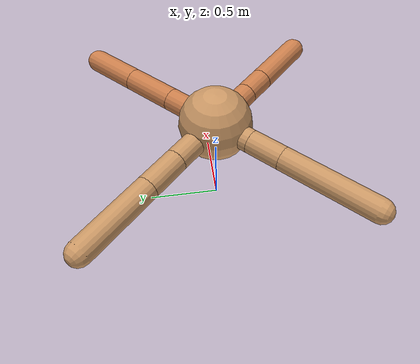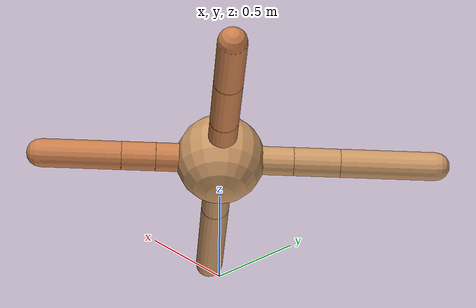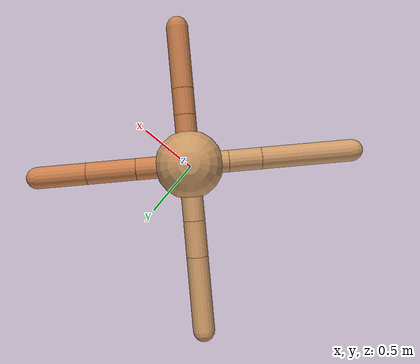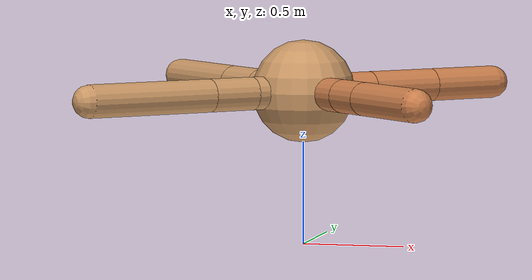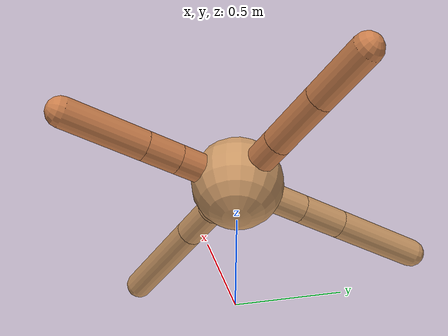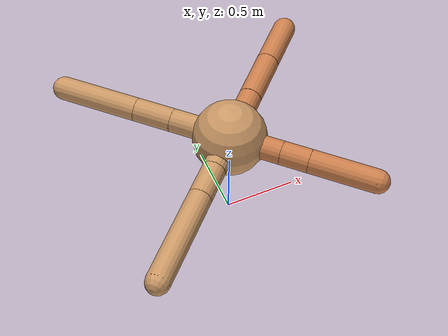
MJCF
<mujoco model="ant">
  <compiler angle="degree" coordinate="local" inertiafromgeom="true" />
  <option integrator="RK4" timestep="0.01" />
  <custom>
    <numeric data="0.0 0.0 0.55 1.0 0.0 0.0 0.0 0.0 1.0 0.0 -1.0 0.0 -1.0 0.0 1.0" name="init_qpos" />
  </custom>
  <default>
    <joint armature="1" damping="1" limited="true" />
    <geom conaffinity="0" condim="3" density="5.0" friction="1.5 0.1 0.1" margin="0.01" rgba="0.8 0.6 0.4 1" />
  </default>
  <worldbody>
    <body name="torso" pos="0 0 0.75">
      <geom name="torso_geom" pos="0 0 0" size="0.25" type="sphere" />

      <body name="front_left_leg" pos="0 0 0">
        <geom fromto="0.0 0.0 0.0 0.2715018656773346 0.2715018656773346 0.0" name="aux_1_geom" size="0.08" type="capsule" rgba=".8 .5 .3 1" />
        <body name="aux_1" pos="0.2715018656773346 0.2715018656773346 0.0">
          <joint axis="0 0 1" name="hip_1" pos="0.0 0.0 0.0" range="-40 40" type="hinge" />
          <geom fromto="0.0 0.0 0.0 0.2531786415042087 0.2531786415042087 0.0" name="left_leg_geom" size="0.08" type="capsule" rgba=".8 .5 .3 1" />
          <body pos="0.2531786415042087 0.2531786415042087 0.0" name="front_left_foot">
            <joint axis="-1 1 0" name="ankle_1" pos="0.0 0.0 0.0" range="30 100" type="hinge" />
            <geom fromto="0.0 0.0 0.0 0.2565979049956918 0.2565979049956918 0.0" name="left_ankle_geom" size="0.08" type="capsule" rgba=".8 .5 .3 1" />
          </body>
        </body>
      </body>
      <body name="front_right_leg" pos="0 0 0">
        <geom fromto="0.0 0.0 0.0 -0.28834330302167166 0.28834330302167166 0.0" name="aux_2_geom" size="0.08" type="capsule" />
        <body name="aux_2" pos="-0.28834330302167166 0.28834330302167166 0.0">
          <joint axis="0 0 1" name="hip_2" pos="0.0 0.0 0.0" range="-40 40" type="hinge" />
          <geom fromto="0.0 0.0 0.0 -0.18447859949484843 0.18447859949484843 0.0" name="right_leg_geom" size="0.08" type="capsule" />
          <body pos="-0.18447859949484843 0.18447859949484843 0.0" name="front_right_foot">
            <joint axis="1 1 0" name="ankle_2" pos="0.0 0.0 0.0" range="-100 -30" type="hinge" />
            <geom fromto="0.0 0.0 0.0 -0.3823880160130483 0.3823880160130483 0.0" name="right_ankle_geom" size="0.08" type="capsule" />
          </body>
        </body>
      </body>
      <body name="left_back_leg" pos="0 0 0">
        <geom fromto="0.0 0.0 0.0 -0.2033177977483388 -0.2033177977483388 0.0" name="aux_3_geom" size="0.08" type="capsule" />
        <body name="aux_3" pos="-0.2033177977483388 -0.2033177977483388 0.0">
          <joint axis="0 0 1" name="hip_3" pos="0.0 0.0 0.0" range="-40 40" type="hinge" />
          <geom fromto="0.0 0.0 0.0 -0.16711171985374315 -0.16711171985374315 0.0" name="back_leg_geom" size="0.08" type="capsule" />
          <body pos="-0.16711171985374315 -0.16711171985374315 0.0" name="left_back_foot">
            <joint axis="-1 1 0" name="ankle_3" pos="0.0 0.0 0.0" range="-100 -30" type="hinge" />
            <geom fromto="0.0 0.0 0.0 -0.4647649367981858 -0.4647649367981858 0.0" name="third_ankle_geom" size="0.08" type="capsule" />
          </body>
        </body>
      </body>
      <body name="right_back_leg" pos="0 0 0">
        <geom fromto="0.0 0.0 0.0 0.25474463964886235 -0.25474463964886235 0.0" name="aux_4_geom" size="0.08" type="capsule" rgba=".8 .5 .3 1" />
        <body name="aux_4" pos="0.25474463964886235 -0.25474463964886235 0.0">
          <joint axis="0 0 1" name="hip_4" pos="0.0 0.0 0.0" range="-40 40" type="hinge" />
          <geom fromto="0.0 0.0 0.0 0.13538774589385663 -0.13538774589385663 0.0" name="rightback_leg_geom" size="0.08" type="capsule" rgba=".8 .5 .3 1" />
          <body pos="0.13538774589385663 -0.13538774589385663 0.0" name="right_back_foot">
            <joint axis="1 1 0" name="ankle_4" pos="0.0 0.0 0.0" range="30 100" type="hinge" />
            <geom fromto="0.0 0.0 0.0 0.3162781189695852 -0.3162781189695852 0.0" name="fourth_ankle_geom" size="0.08" type="capsule" rgba=".8 .5 .3 1" />
          </body>
        </body>
      </body>
    </body>
  </worldbody>
  <actuator>
    <motor ctrllimited="true" ctrlrange="-1.0 1.0" joint="hip_4" gear="150" />
    <motor ctrllimited="true" ctrlrange="-1.0 1.0" joint="ankle_4" gear="150" />
    <motor ctrllimited="true" ctrlrange="-1.0 1.0" joint="hip_1" gear="150" />
    <motor ctrllimited="true" ctrlrange="-1.0 1.0" joint="ankle_1" gear="150" />
    <motor ctrllimited="true" ctrlrange="-1.0 1.0" joint="hip_2" gear="150" />
    <motor ctrllimited="true" ctrlrange="-1.0 1.0" joint="ankle_2" gear="150" />
    <motor ctrllimited="true" ctrlrange="-1.0 1.0" joint="hip_3" gear="150" />
    <motor ctrllimited="true" ctrlrange="-1.0 1.0" joint="ankle_3" gear="150" />
  </actuator>
</mujoco>
